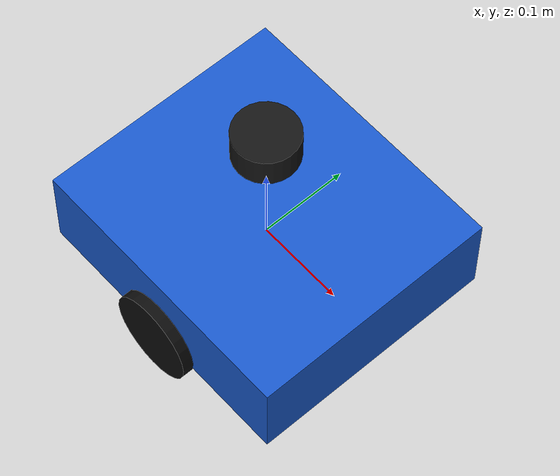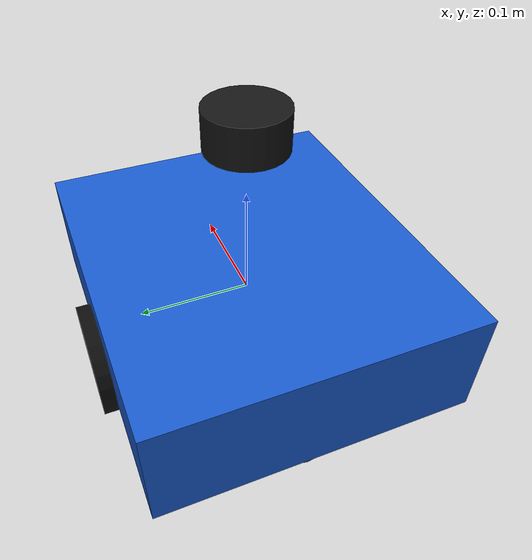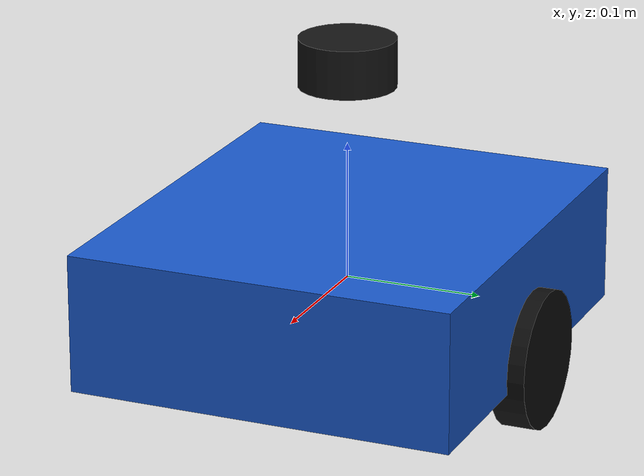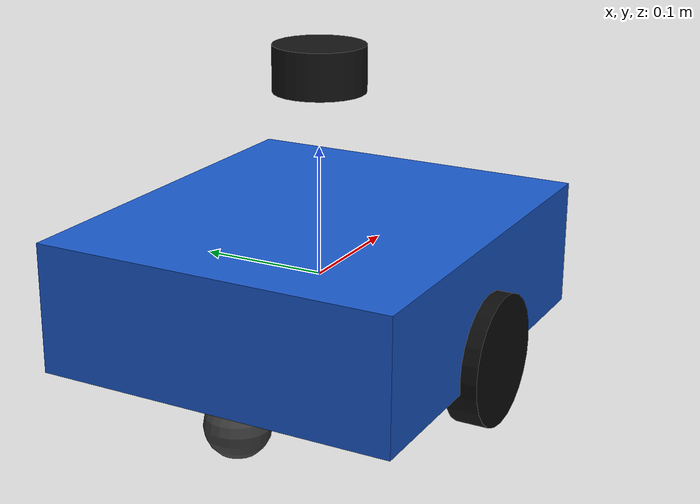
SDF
<?xml version="1.0"?>
<sdf version="1.8">
  <model name="landerpi_sim">
    <pose>0 0 0 0 0 0</pose>
    <self_collide>false</self_collide>

    <link name="base_link">
      <inertial>
        <mass>3.0</mass>
        <inertia>
          <ixx>0.0221</ixx>
          <iyy>0.0281</iyy>
          <izz>0.0424</izz>
        </inertia>
      </inertial>
      <collision name="base_collision">
        <geometry><box><size>0.32 0.28 0.10</size></box></geometry>
      </collision>
      <visual name="base_visual">
        <geometry><box><size>0.32 0.28 0.10</size></box></geometry>
        <material>
          <ambient>0.10 0.35 0.80 1</ambient>
          <diffuse>0.10 0.35 0.80 1</diffuse>
        </material>
      </visual>
    </link>

    <link name="left_wheel_link">
      <pose relative_to="base_link">0 0.14 -0.04 1.5708 0 0</pose>
      <inertial>
        <mass>0.20</mass>
        <inertia><ixx>0.00025</ixx><iyy>0.00025</iyy><izz>0.00010</izz></inertia>
      </inertial>
      <collision name="collision">
        <geometry><cylinder><radius>0.05</radius><length>0.025</length></cylinder></geometry>
        <surface><friction><ode><mu>1.0</mu><mu2>1.0</mu2></ode></friction></surface>
      </collision>
      <visual name="visual">
        <geometry><cylinder><radius>0.05</radius><length>0.025</length></cylinder></geometry>
        <material><ambient>0.05 0.05 0.05 1</ambient><diffuse>0.05 0.05 0.05 1</diffuse></material>
      </visual>
    </link>

    <link name="right_wheel_link">
      <pose relative_to="base_link">0 -0.14 -0.04 1.5708 0 0</pose>
      <inertial>
        <mass>0.20</mass>
        <inertia><ixx>0.00025</ixx><iyy>0.00025</iyy><izz>0.00010</izz></inertia>
      </inertial>
      <collision name="collision">
        <geometry><cylinder><radius>0.05</radius><length>0.025</length></cylinder></geometry>
        <surface><friction><ode><mu>1.0</mu><mu2>1.0</mu2></ode></friction></surface>
      </collision>
      <visual name="visual">
        <geometry><cylinder><radius>0.05</radius><length>0.025</length></cylinder></geometry>
        <material><ambient>0.05 0.05 0.05 1</ambient><diffuse>0.05 0.05 0.05 1</diffuse></material>
      </visual>
    </link>

    <link name="rear_caster_link">
      <pose relative_to="base_link">-0.12 0 -0.075 0 0 0</pose>
      <inertial>
        <mass>0.05</mass>
        <inertia><ixx>0.00001</ixx><iyy>0.00001</iyy><izz>0.00001</izz></inertia>
      </inertial>
      <collision name="collision">
        <geometry><sphere><radius>0.025</radius></sphere></geometry>
        <surface><friction><ode><mu>0.05</mu><mu2>0.05</mu2></ode></friction></surface>
      </collision>
      <visual name="visual">
        <geometry><sphere><radius>0.025</radius></sphere></geometry>
        <material><ambient>0.25 0.25 0.25 1</ambient><diffuse>0.25 0.25 0.25 1</diffuse></material>
      </visual>
    </link>

    <link name="laser_link">
      <pose relative_to="base_link">0 0 0.16 0 0 0</pose>
      <inertial>
        <mass>0.10</mass>
        <inertia><ixx>0.00005</ixx><iyy>0.00005</iyy><izz>0.00005</izz></inertia>
      </inertial>
      <collision name="collision">
        <geometry><cylinder><radius>0.035</radius><length>0.035</length></cylinder></geometry>
      </collision>
      <visual name="visual">
        <geometry><cylinder><radius>0.035</radius><length>0.035</length></cylinder></geometry>
        <material><ambient>0.08 0.08 0.08 1</ambient><diffuse>0.08 0.08 0.08 1</diffuse></material>
      </visual>
      <sensor name="lidar" type="gpu_lidar">
        <topic>/sim/scan</topic>
        <update_rate>10</update_rate>
        <always_on>true</always_on>
        <visualize>true</visualize>
        <lidar>
          <scan>
            <horizontal>
              <samples>720</samples>
              <resolution>1</resolution>
              <min_angle>-3.14159265</min_angle>
              <max_angle>3.14159265</max_angle>
            </horizontal>
          </scan>
          <range>
            <min>0.05</min>
            <max>12.0</max>
            <resolution>0.01</resolution>
          </range>
        </lidar>
      </sensor>
    </link>

    <joint name="left_wheel_joint" type="revolute">
      <parent>base_link</parent><child>left_wheel_link</child>
      <axis><xyz expressed_in="__model__">0 1 0</xyz></axis>
    </joint>
    <joint name="right_wheel_joint" type="revolute">
      <parent>base_link</parent><child>right_wheel_link</child>
      <axis><xyz expressed_in="__model__">0 1 0</xyz></axis>
    </joint>
    <joint name="rear_caster_joint" type="ball">
      <parent>base_link</parent><child>rear_caster_link</child>
    </joint>
    <joint name="laser_joint" type="fixed">
      <parent>base_link</parent><child>laser_link</child>
    </joint>

    <plugin filename="ignition-gazebo-diff-drive-system" name="ignition::gazebo::systems::DiffDrive">
      <left_joint>left_wheel_joint</left_joint>
      <right_joint>right_wheel_joint</right_joint>
      <wheel_separation>0.28</wheel_separation>
      <wheel_radius>0.05</wheel_radius>
      <topic>/cmd_vel</topic>
      <odom_topic>/sim/odom</odom_topic>
      <tf_topic>/sim/tf</tf_topic>
      <frame_id>odom</frame_id>
      <child_frame_id>base_link</child_frame_id>
      <odom_publish_frequency>30</odom_publish_frequency>
      <max_linear_acceleration>0.5</max_linear_acceleration>
      <max_angular_acceleration>1.0</max_angular_acceleration>
    </plugin>
  </model>
</sdf>
